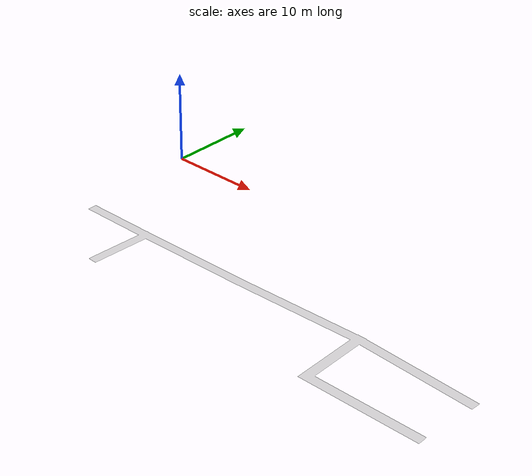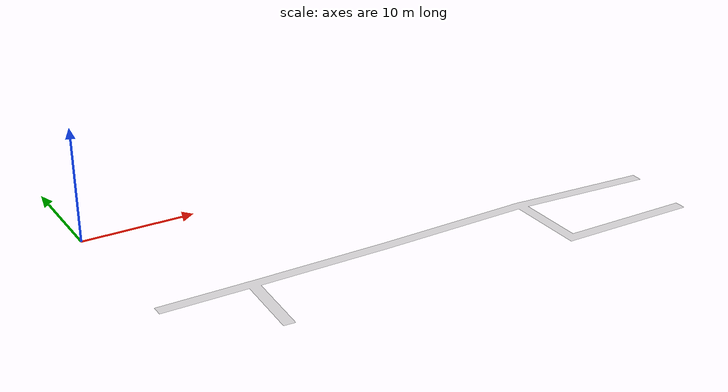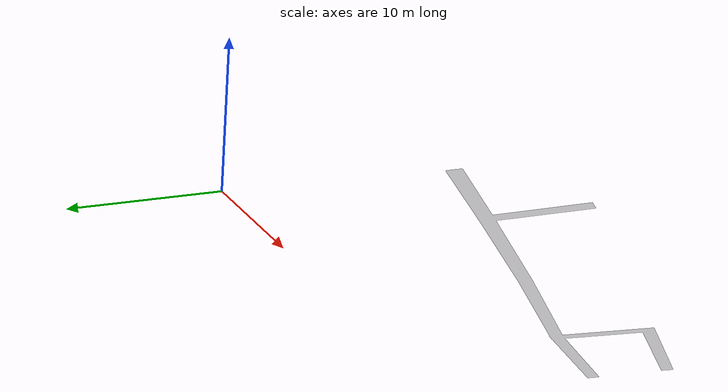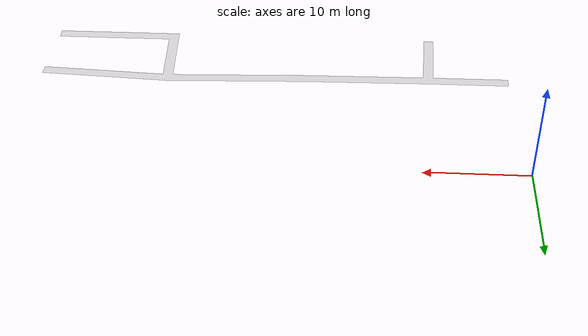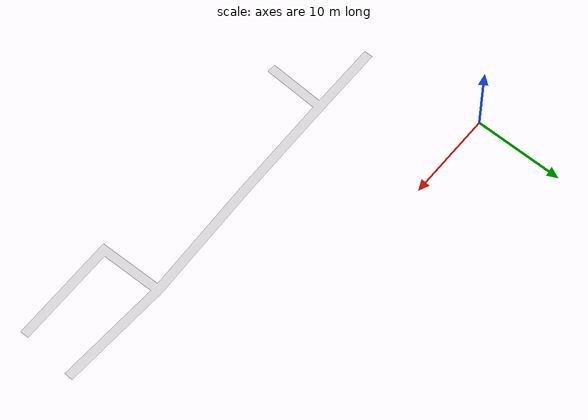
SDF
<?xml version='1.0' encoding='utf-8'?>
<sdf version="1.7">
  <model name="navgraph_1">
    <static>true</static>
    <link name="navgraph_1">
      <visual name="navgraph_1">
        <geometry>
          <mesh>
            <uri>meshes/navgraph_1.obj</uri>
          </mesh>
        </geometry>
        <transparency>0.5</transparency>
      </visual>
      <pose>0 0 0 0 0 0</pose>
    </link>
  </model>
</sdf>
